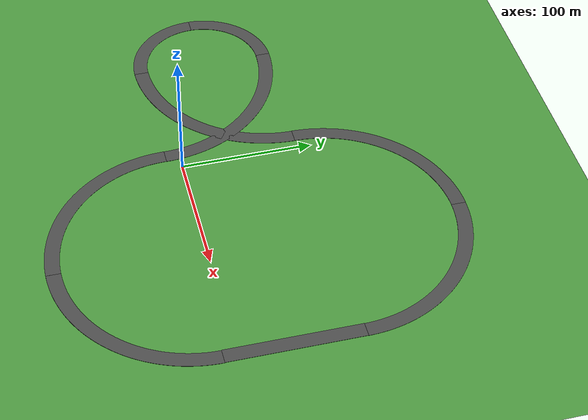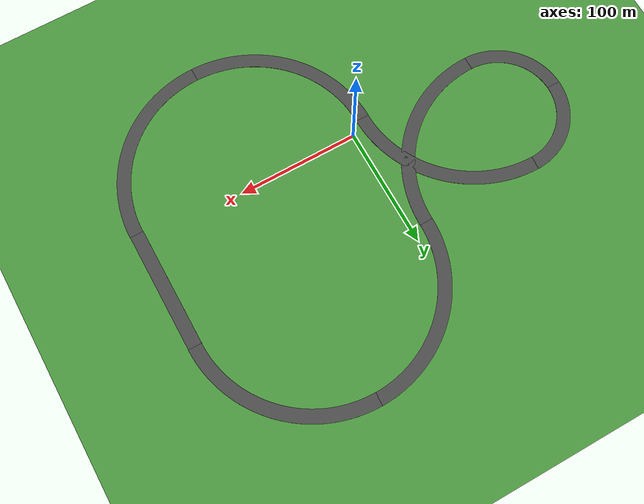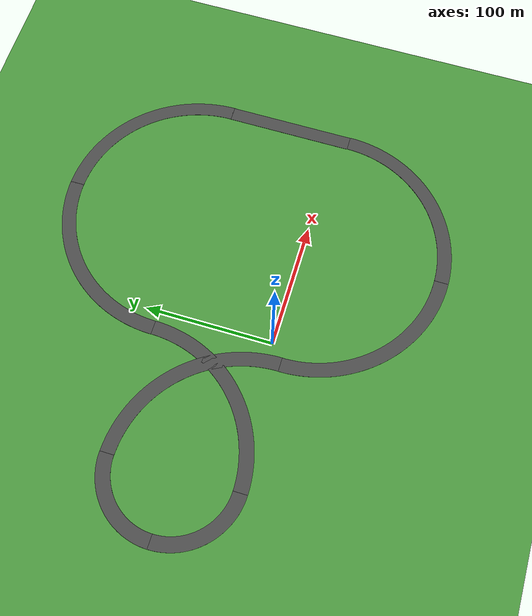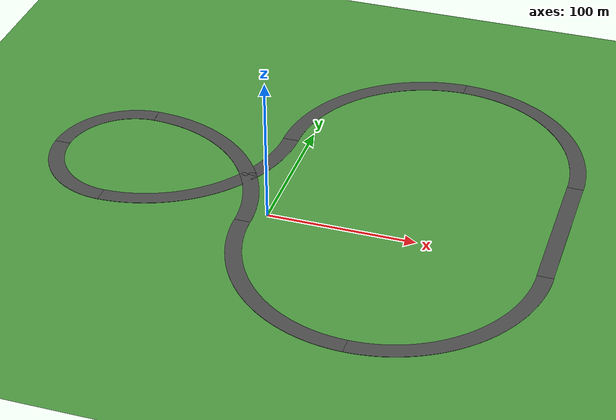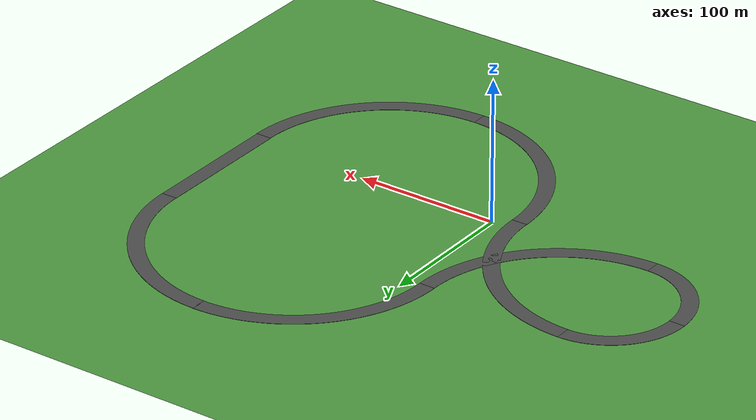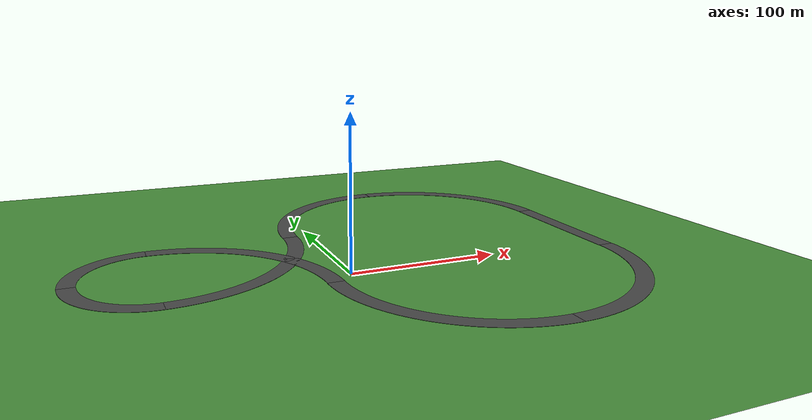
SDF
<sdf version='1.7'>
  <world name='default'>
    <light name='sun' type='directional'>
      <cast_shadows>1</cast_shadows>
      <pose>0 0 10 0 -0 0</pose>
      <diffuse>0.8 0.8 0.8 1</diffuse>
      <specular>0.2 0.2 0.2 1</specular>
      <attenuation>
        <range>1000</range>
        <constant>0.9</constant>
        <linear>0.01</linear>
        <quadratic>0.001</quadratic>
      </attenuation>
      <direction>-0.5 0.1 -0.9</direction>
      <spot>
        <inner_angle>0</inner_angle>
        <outer_angle>0</outer_angle>
        <falloff>0</falloff>
      </spot>
    </light>
    <gravity>0 0 -9.8</gravity>
    <magnetic_field>6e-06 2.3e-05 -4.2e-05</magnetic_field>
    <atmosphere type='adiabatic'/>
    <physics name='default_physics' default='0' type='ode'>
      <max_step_size>0.001</max_step_size>
      <real_time_update_rate>1000</real_time_update_rate>
      <real_time_factor>1</real_time_factor>
    </physics>
    <scene>
      <ambient>0.4 0.4 0.4 1</ambient>
      <background>0.7 0.7 0.7 1</background>
      <shadows>1</shadows>
    </scene>
    <wind/>
    <spherical_coordinates>
      <surface_model>EARTH_WGS84</surface_model>
      <latitude_deg>0</latitude_deg>
      <longitude_deg>0</longitude_deg>
      <elevation>0</elevation>
      <heading_deg>0</heading_deg>
    </spherical_coordinates>
    <gui fullscreen='0'>
      <camera name='user_camera'>
        <pose>3.06236 6.56888 411.941 -1e-06 1.5338 1.60019</pose>
        <view_controller>orbit</view_controller>
        <projection_type>perspective</projection_type>
      </camera>
    </gui>

    <!-- ====== ROAD SEGMENTS ====== -->

    <model name='(DS) Curved Road - 100m'>
      <static>1</static>
      <link name='link'>
        <inertial>
          <pose>0 0 0 0 -0 0</pose>
          <mass>1</mass>
          <inertia>
            <ixx>1</ixx>
            <iyy>1</iyy>
            <izz>1</izz>
            <ixy>0</ixy>
            <ixz>0</ixz>
            <iyz>0</iyz>
          </inertia>
        </inertial>
        <collision name='collision'>
          <geometry>
            <mesh>
              <uri>model://ds_curved_road_100m/meshes/curved_road_100m.dae</uri>
            </mesh>
          </geometry>
          <max_contacts>10</max_contacts>
          <surface>
            <contact>
              <ode/>
            </contact>
            <bounce/>
            <friction>
              <torsional>
                <ode/>
              </torsional>
              <ode/>
            </friction>
          </surface>
        </collision>
        <visual name='visual'>
          <geometry>
            <mesh>
              <uri>model://ds_curved_road_100m/meshes/curved_road_100m.dae</uri>
            </mesh>
          </geometry>
          <material>
            <script>
              <uri>file://media/materials/scripts/ds_sim.material</uri>
              <name>DSSim/Road</name>
            </script>
          </material>
        </visual>
        <self_collide>0</self_collide>
        <enable_wind>0</enable_wind>
        <kinematic>0</kinematic>
      </link>
      <pose>138.873 -62.9225 0 0 -0 0</pose>
    </model>

    <model name='(DS) Curved Road - 100m_0'>
      <static>1</static>
      <link name='link'>
        <inertial>
          <pose>0 0 0 0 -0 0</pose>
          <mass>1</mass>
          <inertia>
            <ixx>1</ixx>
            <iyy>1</iyy>
            <izz>1</izz>
            <ixy>0</ixy>
            <ixz>0</ixz>
            <iyz>0</iyz>
          </inertia>
        </inertial>
        <collision name='collision'>
          <geometry>
            <mesh>
              <uri>model://ds_curved_road_100m/meshes/curved_road_100m.dae</uri>
            </mesh>
          </geometry>
          <max_contacts>10</max_contacts>
          <surface>
            <contact>
              <ode/>
            </contact>
            <bounce/>
            <friction>
              <torsional>
                <ode/>
              </torsional>
              <ode/>
            </friction>
          </surface>
        </collision>
        <visual name='visual'>
          <geometry>
            <mesh>
              <uri>model://ds_curved_road_100m/meshes/curved_road_100m.dae</uri>
            </mesh>
          </geometry>
          <material>
            <script>
              <uri>file://media/materials/scripts/ds_sim.material</uri>
              <name>DSSim/Road</name>
            </script>
          </material>
        </visual>
        <self_collide>0</self_collide>
        <enable_wind>0</enable_wind>
        <kinematic>0</kinematic>
      </link>
      <pose>-60.9617 42.3697 0 0 -0 1.5707</pose>
    </model>

    <model name='(DS) Curved Road - 100m_1'>
      <static>1</static>
      <link name='link'>
        <inertial>
          <pose>0 0 0 0 -0 0</pose>
          <mass>1</mass>
          <inertia>
            <ixx>1</ixx>
            <iyy>1</iyy>
            <izz>1</izz>
            <ixy>0</ixy>
            <ixz>0</ixz>
            <iyz>0</iyz>
          </inertia>
        </inertial>
        <collision name='collision'>
          <geometry>
            <mesh>
              <uri>model://ds_curved_road_100m/meshes/curved_road_100m.dae</uri>
            </mesh>
          </geometry>
          <max_contacts>10</max_contacts>
          <surface>
            <contact>
              <ode/>
            </contact>
            <bounce/>
            <friction>
              <torsional>
                <ode/>
              </torsional>
              <ode/>
            </friction>
          </surface>
        </collision>
        <visual name='visual'>
          <geometry>
            <mesh>
              <uri>model://ds_curved_road_100m/meshes/curved_road_100m.dae</uri>
            </mesh>
          </geometry>
          <material>
            <script>
              <uri>file://media/materials/scripts/ds_sim.material</uri>
              <name>DSSim/Road</name>
            </script>
          </material>
        </visual>
        <self_collide>0</self_collide>
        <enable_wind>0</enable_wind>
        <kinematic>0</kinematic>
      </link>
      <pose>33.7375 142.342 0 0 -0 3.1415</pose>
    </model>

    <model name='(DS) Curved Road - 100m_2'>
      <static>1</static>
      <link name='link'>
        <inertial>
          <pose>0 0 0 0 -0 0</pose>
          <mass>1</mass>
          <inertia>
            <ixx>1</ixx>
            <iyy>1</iyy>
            <izz>1</izz>
            <ixy>0</ixy>
            <ixz>0</ixz>
            <iyz>0</iyz>
          </inertia>
        </inertial>
        <collision name='collision'>
          <geometry>
            <mesh>
              <uri>model://ds_curved_road_100m/meshes/curved_road_100m.dae</uri>
            </mesh>
          </geometry>
          <max_contacts>10</max_contacts>
          <surface>
            <contact>
              <ode/>
            </contact>
            <bounce/>
            <friction>
              <torsional>
                <ode/>
              </torsional>
              <ode/>
            </friction>
          </surface>
        </collision>
        <visual name='visual'>
          <geometry>
            <mesh>
              <uri>model://ds_curved_road_100m/meshes/curved_road_100m.dae</uri>
            </mesh>
          </geometry>
          <material>
            <script>
              <uri>file://media/materials/scripts/ds_sim.material</uri>
              <name>DSSim/Road</name>
            </script>
          </material>
        </visual>
        <self_collide>0</self_collide>
        <enable_wind>0</enable_wind>
        <kinematic>0</kinematic>
      </link>
      <pose>33.3919 -62.9336 0 0 0 -1.5707</pose>
    </model>

    <audio>
      <device>default</device>
    </audio>

    <model name='grassland'>
      <static>1</static>
      <link name='link'>
        <collision name='collision'>
          <geometry>
            <plane>
              <normal>0 0 1</normal>
              <size>500 500</size>
            </plane>
          </geometry>
          <surface>
            <friction>
              <ode>
                <mu>100</mu>
                <mu2>50</mu2>
              </ode>
              <torsional>
                <ode/>
              </torsional>
            </friction>
            <contact>
              <ode/>
            </contact>
            <bounce/>
          </surface>
          <max_contacts>10</max_contacts>
        </collision>
        <visual name='visual'>
          <cast_shadows>0</cast_shadows>
          <geometry>
            <plane>
              <normal>0 0 1</normal>
              <size>500 500</size>
            </plane>
          </geometry>
          <material>
            <script>
              <uri>file://media/materials/scripts/gazebo.material</uri>
              <name>Gazebo/Grass</name>
            </script>
          </material>
        </visual>
        <self_collide>0</self_collide>
        <enable_wind>0</enable_wind>
        <kinematic>0</kinematic>
      </link>
      <pose>0 0 0 0 -0 0</pose>
    </model>

    <model name='(DS) Curved Road - 50m_1'>
      <static>1</static>
      <link name='link'>
        <inertial>
          <pose>0 0 0 0 -0 0</pose>
          <mass>1</mass>
          <inertia>
            <ixx>1</ixx>
            <iyy>1</iyy>
            <izz>1</izz>
            <ixy>0</ixy>
            <ixz>0</ixz>
            <iyz>0</iyz>
          </inertia>
        </inertial>
        <collision name='collision'>
          <geometry>
            <mesh>
              <uri>model://ds_curved_road_50m/meshes/curved_road_50m.dae</uri>
            </mesh>
          </geometry>
          <max_contacts>10</max_contacts>
          <surface>
            <contact>
              <ode/>
            </contact>
            <bounce/>
            <friction>
              <torsional>
                <ode/>
              </torsional>
              <ode/>
            </friction>
          </surface>
        </collision>
        <visual name='visual'>
          <geometry>
            <mesh>
              <uri>model://ds_curved_road_50m/meshes/curved_road_50m.dae</uri>
            </mesh>
          </geometry>
          <material>
            <script>
              <uri>file://media/materials/scripts/ds_sim.material</uri>
              <name>DSSim/Road</name>
            </script>
          </material>
        </visual>
        <self_collide>0</self_collide>
        <enable_wind>0</enable_wind>
        <kinematic>0</kinematic>
      </link>
      <pose>-141.043 67.4477 0 0 -0 3.14159</pose>
    </model>

    <model name='(DS) Curved Road - 50m_2'>
      <static>1</static>
      <link name='link'>
        <inertial>
          <pose>0 0 0 0 -0 0</pose>
          <mass>1</mass>
          <inertia>
            <ixx>1</ixx>
            <iyy>1</iyy>
            <izz>1</izz>
            <ixy>0</ixy>
            <ixz>0</ixz>
            <iyz>0</iyz>
          </inertia>
        </inertial>
        <collision name='collision'>
          <geometry>
            <mesh>
              <uri>model://ds_curved_road_50m/meshes/curved_road_50m.dae</uri>
            </mesh>
          </geometry>
          <max_contacts>10</max_contacts>
          <surface>
            <contact>
              <ode/>
            </contact>
            <bounce/>
            <friction>
              <torsional>
                <ode/>
              </torsional>
              <ode/>
            </friction>
          </surface>
        </collision>
        <visual name='visual'>
          <geometry>
            <mesh>
              <uri>model://ds_curved_road_50m/meshes/curved_road_50m.dae</uri>
            </mesh>
          </geometry>
          <material>
            <script>
              <uri>file://media/materials/scripts/ds_sim.material</uri>
              <name>DSSim/Road</name>
            </script>
          </material>
        </visual>
        <self_collide>0</self_collide>
        <enable_wind>0</enable_wind>
        <kinematic>0</kinematic>
      </link>
      <pose>-141.008 12.0335 0 0 -0 -1.57079</pose>
    </model>

    <model name='(DS) Curved Road - 100m_3'>
      <static>1</static>
      <link name='link'>
        <inertial>
          <pose>0 0 0 0 -0 0</pose>
          <mass>1</mass>
          <inertia>
            <ixx>1</ixx>
            <iyy>1</iyy>
            <izz>1</izz>
            <ixy>0</ixy>
            <ixz>0</ixz>
            <iyz>0</iyz>
          </inertia>
        </inertial>
        <collision name='collision'>
          <geometry>
            <mesh>
              <uri>model://ds_curved_road_100m/meshes/curved_road_100m.dae</uri>
            </mesh>
          </geometry>
          <max_contacts>10</max_contacts>
          <surface>
            <contact>
              <ode/>
            </contact>
            <bounce/>
            <friction>
              <torsional>
                <ode/>
              </torsional>
              <ode/>
            </friction>
          </surface>
        </collision>
        <visual name='visual'>
          <geometry>
            <mesh>
              <uri>model://ds_curved_road_100m/meshes/curved_road_100m.dae</uri>
            </mesh>
          </geometry>
          <material>
            <script>
              <uri>file://media/materials/scripts/ds_sim.material</uri>
              <name>DSSim/Road</name>
            </script>
          </material>
        </visual>
        <self_collide>0</self_collide>
        <enable_wind>0</enable_wind>
        <kinematic>0</kinematic>
      </link>
      <pose>-60.6385 37.0159 0 0 -0 0</pose>
    </model>

    <model name='(DS) Curved Road - 100m_3_clone'>
      <static>1</static>
      <link name='link'>
        <inertial>
          <pose>0 0 0 0 -0 0</pose>
          <mass>1</mass>
          <inertia>
            <ixx>1</ixx>
            <iyy>1</iyy>
            <izz>1</izz>
            <ixy>0</ixy>
            <ixz>0</ixz>
            <iyz>0</iyz>
          </inertia>
        </inertial>
        <collision name='collision'>
          <geometry>
            <mesh>
              <uri>model://ds_curved_road_100m/meshes/curved_road_100m.dae</uri>
            </mesh>
          </geometry>
          <max_contacts>10</max_contacts>
          <surface>
            <contact>
              <ode/>
            </contact>
            <bounce/>
            <friction>
              <torsional>
                <ode/>
              </torsional>
              <ode/>
            </friction>
          </surface>
        </collision>
        <visual name='visual'>
          <geometry>
            <mesh>
              <uri>model://ds_curved_road_100m/meshes/curved_road_100m.dae</uri>
            </mesh>
          </geometry>
          <material>
            <script>
              <uri>file://media/materials/scripts/ds_sim.material</uri>
              <name>DSSim/Road</name>
            </script>
          </material>
        </visual>
        <self_collide>0</self_collide>
        <enable_wind>0</enable_wind>
        <kinematic>0</kinematic>
      </link>
      <pose>138.741 142.237 0 0 -0 1.5708</pose>
    </model>

    <model name='(DS) Straight Road - 100m_1'>
      <static>1</static>
      <link name='link'>
        <inertial>
          <pose>0 0 0 0 -0 0</pose>
          <mass>1</mass>
          <inertia>
            <ixx>1</ixx>
            <iyy>1</iyy>
            <izz>1</izz>
            <ixy>0</ixy>
            <ixz>0</ixz>
            <iyz>0</iyz>
          </inertia>
        </inertial>
        <collision name='collision'>
          <geometry>
            <mesh>
              <uri>model://ds_straight_road_100m/meshes/straight_road_100m.dae</uri>
            </mesh>
          </geometry>
          <max_contacts>10</max_contacts>
          <surface>
            <contact>
              <ode/>
            </contact>
            <bounce/>
            <friction>
              <torsional>
                <ode/>
              </torsional>
              <ode/>
            </friction>
          </surface>
        </collision>
        <visual name='visual'>
          <geometry>
            <mesh>
              <uri>model://ds_straight_road_100m/meshes/straight_road_100m.dae</uri>
            </mesh>
          </geometry>
          <material>
            <script>
              <uri>file://media/materials/scripts/ds_sim.material</uri>
              <name>DSSim/Road</name>
            </script>
          </material>
        </visual>
        <self_collide>0</self_collide>
        <enable_wind>0</enable_wind>
        <kinematic>0</kinematic>
      </link>
      <pose>175.842 39.8173 0 0 -0 1.5708</pose>
    </model>

  </world>
</sdf>
